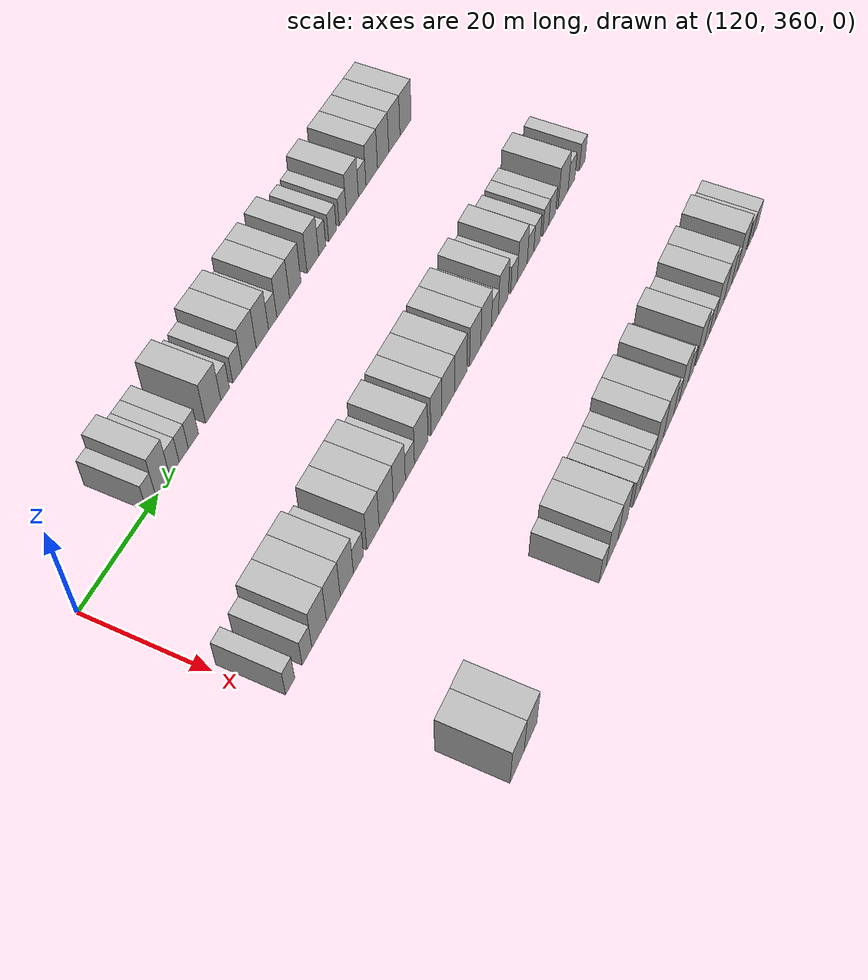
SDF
<sdf version="1.6">
 <world name="default">
  <model name="building_836">
   <static>1</static>
   <pose>115.0000 378.2056 0 0.000000 0.000000 0.000000</pose>
   <link name="link">
    <pose>0 0 3.00 0 0 0</pose>
    <collision name="collision"><geometry><box><size>10.0000 2.4378 6.0000</size></box></geometry></collision>
    <visual name="visual">
     <cast_shadows>0</cast_shadows>
     <geometry><box><size>10.0000 2.4378 6.0000</size></box></geometry>
     <material>
      <script>
       <uri>model://HANNAS_wall/materials/scripts</uri>
       <uri>model://HANNAS_wall/materials/textures</uri>
       <name>vrc/HANNAS_wall</name>
      </script>
     </material>
    </visual>
   </link>
  </model>
  <model name="building_837">
   <static>1</static>
   <pose>115.0000 381.2652 0 0.000000 0.000000 0.000000</pose>
   <link name="link">
    <pose>0 0 4.50 0 0 0</pose>
    <collision name="collision"><geometry><box><size>10.0000 3.6815 9.0000</size></box></geometry></collision>
    <visual name="visual">
     <cast_shadows>0</cast_shadows>
     <geometry><box><size>10.0000 3.6815 9.0000</size></box></geometry>
     <material>
      <script>
       <uri>model://HANNAS_wall/materials/scripts</uri>
       <uri>model://HANNAS_wall/materials/textures</uri>
       <name>vrc/HANNAS_wall</name>
      </script>
     </material>
    </visual>
   </link>
  </model>
  <model name="building_838">
   <static>1</static>
   <pose>115.0000 384.3918 0 0.000000 0.000000 0.000000</pose>
   <link name="link">
    <pose>0 0 3.00 0 0 0</pose>
    <collision name="collision"><geometry><box><size>10.0000 2.5716 6.0000</size></box></geometry></collision>
    <visual name="visual">
     <cast_shadows>0</cast_shadows>
     <geometry><box><size>10.0000 2.5716 6.0000</size></box></geometry>
     <material>
      <script>
       <uri>model://HANNAS_wall/materials/scripts</uri>
       <uri>model://HANNAS_wall/materials/textures</uri>
       <name>vrc/HANNAS_wall</name>
      </script>
     </material>
    </visual>
   </link>
  </model>
  <model name="building_839">
   <static>1</static>
   <pose>115.0000 386.9191 0 0.000000 0.000000 0.000000</pose>
   <link name="link">
    <pose>0 0 3.00 0 0 0</pose>
    <collision name="collision"><geometry><box><size>10.0000 2.4829 6.0000</size></box></geometry></collision>
    <visual name="visual">
     <cast_shadows>0</cast_shadows>
     <geometry><box><size>10.0000 2.4829 6.0000</size></box></geometry>
     <material>
      <script>
       <uri>model://HANNAS_wall/materials/scripts</uri>
       <uri>model://HANNAS_wall/materials/textures</uri>
       <name>vrc/HANNAS_wall</name>
      </script>
     </material>
    </visual>
   </link>
  </model>
  <model name="building_840">
   <static>1</static>
   <pose>115.0000 389.5580 0 0.000000 0.000000 0.000000</pose>
   <link name="link">
    <pose>0 0 3.00 0 0 0</pose>
    <collision name="collision"><geometry><box><size>10.0000 2.7949 6.0000</size></box></geometry></collision>
    <visual name="visual">
     <cast_shadows>0</cast_shadows>
     <geometry><box><size>10.0000 2.7949 6.0000</size></box></geometry>
     <material>
      <script>
       <uri>model://HANNAS_wall/materials/scripts</uri>
       <uri>model://HANNAS_wall/materials/textures</uri>
       <name>vrc/HANNAS_wall</name>
      </script>
     </material>
    </visual>
   </link>
  </model>
  <model name="building_841">
   <static>1</static>
   <pose>115.0000 395.1320 0 0.000000 0.000000 0.000000</pose>
   <link name="link">
    <pose>0 0 4.50 0 0 0</pose>
    <collision name="collision"><geometry><box><size>10.0000 4.3532 9.0000</size></box></geometry></collision>
    <visual name="visual">
     <cast_shadows>0</cast_shadows>
     <geometry><box><size>10.0000 4.3532 9.0000</size></box></geometry>
     <material>
      <script>
       <uri>model://HANNAS_wall/materials/scripts</uri>
       <uri>model://HANNAS_wall/materials/textures</uri>
       <name>vrc/HANNAS_wall</name>
      </script>
     </material>
    </visual>
   </link>
  </model>
  <model name="building_842">
   <static>1</static>
   <pose>115.0000 398.5623 0 0.000000 0.000000 0.000000</pose>
   <link name="link">
    <pose>0 0 3.00 0 0 0</pose>
    <collision name="collision"><geometry><box><size>10.0000 2.5073 6.0000</size></box></geometry></collision>
    <visual name="visual">
     <cast_shadows>0</cast_shadows>
     <geometry><box><size>10.0000 2.5073 6.0000</size></box></geometry>
     <material>
      <script>
       <uri>model://HANNAS_wall/materials/scripts</uri>
       <uri>model://HANNAS_wall/materials/textures</uri>
       <name>vrc/HANNAS_wall</name>
      </script>
     </material>
    </visual>
   </link>
  </model>
  <model name="building_843">
   <static>1</static>
   <pose>115.0000 402.1955 0 0.000000 0.000000 0.000000</pose>
   <link name="link">
    <pose>0 0 3.00 0 0 0</pose>
    <collision name="collision"><geometry><box><size>10.0000 2.7591 6.0000</size></box></geometry></collision>
    <visual name="visual">
     <cast_shadows>0</cast_shadows>
     <geometry><box><size>10.0000 2.7591 6.0000</size></box></geometry>
     <material>
      <script>
       <uri>model://HANNAS_wall/materials/scripts</uri>
       <uri>model://HANNAS_wall/materials/textures</uri>
       <name>vrc/HANNAS_wall</name>
      </script>
     </material>
    </visual>
   </link>
  </model>
  <model name="building_844">
   <static>1</static>
   <pose>115.0000 405.6885 0 0.000000 0.000000 0.000000</pose>
   <link name="link">
    <pose>0 0 4.50 0 0 0</pose>
    <collision name="collision"><geometry><box><size>10.0000 4.2268 9.0000</size></box></geometry></collision>
    <visual name="visual">
     <cast_shadows>0</cast_shadows>
     <geometry><box><size>10.0000 4.2268 9.0000</size></box></geometry>
     <material>
      <script>
       <uri>model://HANNAS_wall/materials/scripts</uri>
       <uri>model://HANNAS_wall/materials/textures</uri>
       <name>vrc/HANNAS_wall</name>
      </script>
     </material>
    </visual>
   </link>
  </model>
  <model name="building_845">
   <static>1</static>
   <pose>115.0000 409.6979 0 0.000000 0.000000 0.000000</pose>
   <link name="link">
    <pose>0 0 4.50 0 0 0</pose>
    <collision name="collision"><geometry><box><size>10.0000 3.7919 9.0000</size></box></geometry></collision>
    <visual name="visual">
     <cast_shadows>0</cast_shadows>
     <geometry><box><size>10.0000 3.7919 9.0000</size></box></geometry>
     <material>
      <script>
       <uri>model://HANNAS_wall/materials/scripts</uri>
       <uri>model://HANNAS_wall/materials/textures</uri>
       <name>vrc/HANNAS_wall</name>
      </script>
     </material>
    </visual>
   </link>
  </model>
  <model name="building_846">
   <static>1</static>
   <pose>115.0000 412.8919 0 0.000000 0.000000 0.000000</pose>
   <link name="link">
    <pose>0 0 3.00 0 0 0</pose>
    <collision name="collision"><geometry><box><size>10.0000 2.5961 6.0000</size></box></geometry></collision>
    <visual name="visual">
     <cast_shadows>0</cast_shadows>
     <geometry><box><size>10.0000 2.5961 6.0000</size></box></geometry>
     <material>
      <script>
       <uri>model://HANNAS_wall/materials/scripts</uri>
       <uri>model://HANNAS_wall/materials/textures</uri>
       <name>vrc/HANNAS_wall</name>
      </script>
     </material>
    </visual>
   </link>
  </model>
  <model name="building_847">
   <static>1</static>
   <pose>115.0000 416.2108 0 0.000000 0.000000 0.000000</pose>
   <link name="link">
    <pose>0 0 4.50 0 0 0</pose>
    <collision name="collision"><geometry><box><size>10.0000 4.0418 9.0000</size></box></geometry></collision>
    <visual name="visual">
     <cast_shadows>0</cast_shadows>
     <geometry><box><size>10.0000 4.0418 9.0000</size></box></geometry>
     <material>
      <script>
       <uri>model://HANNAS_wall/materials/scripts</uri>
       <uri>model://HANNAS_wall/materials/textures</uri>
       <name>vrc/HANNAS_wall</name>
      </script>
     </material>
    </visual>
   </link>
  </model>
  <model name="building_848">
   <static>1</static>
   <pose>115.0000 420.0772 0 0.000000 0.000000 0.000000</pose>
   <link name="link">
    <pose>0 0 4.50 0 0 0</pose>
    <collision name="collision"><geometry><box><size>10.0000 3.6910 9.0000</size></box></geometry></collision>
    <visual name="visual">
     <cast_shadows>0</cast_shadows>
     <geometry><box><size>10.0000 3.6910 9.0000</size></box></geometry>
     <material>
      <script>
       <uri>model://HANNAS_wall/materials/scripts</uri>
       <uri>model://HANNAS_wall/materials/textures</uri>
       <name>vrc/HANNAS_wall</name>
      </script>
     </material>
    </visual>
   </link>
  </model>
  <model name="building_849">
   <static>1</static>
   <pose>115.0000 425.8542 0 0.000000 0.000000 0.000000</pose>
   <link name="link">
    <pose>0 0 4.50 0 0 0</pose>
    <collision name="collision"><geometry><box><size>10.0000 3.8630 9.0000</size></box></geometry></collision>
    <visual name="visual">
     <cast_shadows>0</cast_shadows>
     <geometry><box><size>10.0000 3.8630 9.0000</size></box></geometry>
     <material>
      <script>
       <uri>model://HANNAS_wall/materials/scripts</uri>
       <uri>model://HANNAS_wall/materials/textures</uri>
       <name>vrc/HANNAS_wall</name>
      </script>
     </material>
    </visual>
   </link>
  </model>
  <model name="building_850">
   <static>1</static>
   <pose>115.0000 428.9865 0 0.000000 0.000000 0.000000</pose>
   <link name="link">
    <pose>0 0 3.00 0 0 0</pose>
    <collision name="collision"><geometry><box><size>10.0000 2.4016 6.0000</size></box></geometry></collision>
    <visual name="visual">
     <cast_shadows>0</cast_shadows>
     <geometry><box><size>10.0000 2.4016 6.0000</size></box></geometry>
     <material>
      <script>
       <uri>model://HANNAS_wall/materials/scripts</uri>
       <uri>model://HANNAS_wall/materials/textures</uri>
       <name>vrc/HANNAS_wall</name>
      </script>
     </material>
    </visual>
   </link>
  </model>
  <model name="building_851">
   <static>1</static>
   <pose>115.0000 432.4930 0 0.000000 0.000000 0.000000</pose>
   <link name="link">
    <pose>0 0 3.00 0 0 0</pose>
    <collision name="collision"><geometry><box><size>10.0000 2.6115 6.0000</size></box></geometry></collision>
    <visual name="visual">
     <cast_shadows>0</cast_shadows>
     <geometry><box><size>10.0000 2.6115 6.0000</size></box></geometry>
     <material>
      <script>
       <uri>model://HANNAS_wall/materials/scripts</uri>
       <uri>model://HANNAS_wall/materials/textures</uri>
       <name>vrc/HANNAS_wall</name>
      </script>
     </material>
    </visual>
   </link>
  </model>
  <model name="building_852">
   <static>1</static>
   <pose>115.0000 436.0468 0 0.000000 0.000000 0.000000</pose>
   <link name="link">
    <pose>0 0 3.00 0 0 0</pose>
    <collision name="collision"><geometry><box><size>10.0000 2.4961 6.0000</size></box></geometry></collision>
    <visual name="visual">
     <cast_shadows>0</cast_shadows>
     <geometry><box><size>10.0000 2.4961 6.0000</size></box></geometry>
     <material>
      <script>
       <uri>model://HANNAS_wall/materials/scripts</uri>
       <uri>model://HANNAS_wall/materials/textures</uri>
       <name>vrc/HANNAS_wall</name>
      </script>
     </material>
    </visual>
   </link>
  </model>
  <model name="building_853">
   <static>1</static>
   <pose>115.0000 439.4308 0 0.000000 0.000000 0.000000</pose>
   <link name="link">
    <pose>0 0 4.50 0 0 0</pose>
    <collision name="collision"><geometry><box><size>10.0000 4.2719 9.0000</size></box></geometry></collision>
    <visual name="visual">
     <cast_shadows>0</cast_shadows>
     <geometry><box><size>10.0000 4.2719 9.0000</size></box></geometry>
     <material>
      <script>
       <uri>model://HANNAS_wall/materials/scripts</uri>
       <uri>model://HANNAS_wall/materials/textures</uri>
       <name>vrc/HANNAS_wall</name>
      </script>
     </material>
    </visual>
   </link>
  </model>
  <model name="building_854">
   <static>1</static>
   <pose>115.0000 442.9265 0 0.000000 0.000000 0.000000</pose>
   <link name="link">
    <pose>0 0 3.00 0 0 0</pose>
    <collision name="collision"><geometry><box><size>10.0000 2.7197 6.0000</size></box></geometry></collision>
    <visual name="visual">
     <cast_shadows>0</cast_shadows>
     <geometry><box><size>10.0000 2.7197 6.0000</size></box></geometry>
     <material>
      <script>
       <uri>model://HANNAS_wall/materials/scripts</uri>
       <uri>model://HANNAS_wall/materials/textures</uri>
       <name>vrc/HANNAS_wall</name>
      </script>
     </material>
    </visual>
   </link>
  </model>
  <model name="building_855">
   <static>1</static>
   <pose>115.0000 446.4044 0 0.000000 0.000000 0.000000</pose>
   <link name="link">
    <pose>0 0 4.50 0 0 0</pose>
    <collision name="collision"><geometry><box><size>10.0000 4.2360 9.0000</size></box></geometry></collision>
    <visual name="visual">
     <cast_shadows>0</cast_shadows>
     <geometry><box><size>10.0000 4.2360 9.0000</size></box></geometry>
     <material>
      <script>
       <uri>model://HANNAS_wall/materials/scripts</uri>
       <uri>model://HANNAS_wall/materials/textures</uri>
       <name>vrc/HANNAS_wall</name>
      </script>
     </material>
    </visual>
   </link>
  </model>
  <model name="building_856">
   <static>1</static>
   <pose>115.0000 450.6155 0 0.000000 0.000000 0.000000</pose>
   <link name="link">
    <pose>0 0 4.50 0 0 0</pose>
    <collision name="collision"><geometry><box><size>10.0000 4.1862 9.0000</size></box></geometry></collision>
    <visual name="visual">
     <cast_shadows>0</cast_shadows>
     <geometry><box><size>10.0000 4.1862 9.0000</size></box></geometry>
     <material>
      <script>
       <uri>model://HANNAS_wall/materials/scripts</uri>
       <uri>model://HANNAS_wall/materials/textures</uri>
       <name>vrc/HANNAS_wall</name>
      </script>
     </material>
    </visual>
   </link>
  </model>
  <model name="building_857">
   <static>1</static>
   <pose>115.0000 454.8383 0 0.000000 0.000000 0.000000</pose>
   <link name="link">
    <pose>0 0 4.50 0 0 0</pose>
    <collision name="collision"><geometry><box><size>10.0000 4.2594 9.0000</size></box></geometry></collision>
    <visual name="visual">
     <cast_shadows>0</cast_shadows>
     <geometry><box><size>10.0000 4.2594 9.0000</size></box></geometry>
     <material>
      <script>
       <uri>model://HANNAS_wall/materials/scripts</uri>
       <uri>model://HANNAS_wall/materials/textures</uri>
       <name>vrc/HANNAS_wall</name>
      </script>
     </material>
    </visual>
   </link>
  </model>
  <model name="building_858">
   <static>1</static>
   <pose>115.0000 459.1244 0 0.000000 0.000000 0.000000</pose>
   <link name="link">
    <pose>0 0 4.50 0 0 0</pose>
    <collision name="collision"><geometry><box><size>10.0000 4.3128 9.0000</size></box></geometry></collision>
    <visual name="visual">
     <cast_shadows>0</cast_shadows>
     <geometry><box><size>10.0000 4.3128 9.0000</size></box></geometry>
     <material>
      <script>
       <uri>model://HANNAS_wall/materials/scripts</uri>
       <uri>model://HANNAS_wall/materials/textures</uri>
       <name>vrc/HANNAS_wall</name>
      </script>
     </material>
    </visual>
   </link>
  </model>
  <model name="building_1057">
   <static>1</static>
   <pose>145.0000 362.2427 0 0.000000 0.000000 0.000000</pose>
   <link name="link">
    <pose>0 0 3.00 0 0 0</pose>
    <collision name="collision"><geometry><box><size>10.0000 2.4571 6.0000</size></box></geometry></collision>
    <visual name="visual">
     <cast_shadows>0</cast_shadows>
     <geometry><box><size>10.0000 2.4571 6.0000</size></box></geometry>
     <material>
      <script>
       <uri>model://HANNAS_wall/materials/scripts</uri>
       <uri>model://HANNAS_wall/materials/textures</uri>
       <name>vrc/HANNAS_wall</name>
      </script>
     </material>
    </visual>
   </link>
  </model>
  <model name="building_1058">
   <static>1</static>
   <pose>145.0000 366.7881 0 0.000000 0.000000 0.000000</pose>
   <link name="link">
    <pose>0 0 3.00 0 0 0</pose>
    <collision name="collision"><geometry><box><size>10.0000 2.6337 6.0000</size></box></geometry></collision>
    <visual name="visual">
     <cast_shadows>0</cast_shadows>
     <geometry><box><size>10.0000 2.6337 6.0000</size></box></geometry>
     <material>
      <script>
       <uri>model://HANNAS_wall/materials/scripts</uri>
       <uri>model://HANNAS_wall/materials/textures</uri>
       <name>vrc/HANNAS_wall</name>
      </script>
     </material>
    </visual>
   </link>
  </model>
  <model name="building_1059">
   <static>1</static>
   <pose>145.0000 370.1492 0 0.000000 0.000000 0.000000</pose>
   <link name="link">
    <pose>0 0 4.50 0 0 0</pose>
    <collision name="collision"><geometry><box><size>10.0000 4.0883 9.0000</size></box></geometry></collision>
    <visual name="visual">
     <cast_shadows>0</cast_shadows>
     <geometry><box><size>10.0000 4.0883 9.0000</size></box></geometry>
     <material>
      <script>
       <uri>model://HANNAS_wall/materials/scripts</uri>
       <uri>model://HANNAS_wall/materials/textures</uri>
       <name>vrc/HANNAS_wall</name>
      </script>
     </material>
    </visual>
   </link>
  </model>
  <model name="building_1060">
   <static>1</static>
   <pose>145.0000 374.1680 0 0.000000 0.000000 0.000000</pose>
   <link name="link">
    <pose>0 0 4.50 0 0 0</pose>
    <collision name="collision"><geometry><box><size>10.0000 3.9494 9.0000</size></box></geometry></collision>
    <visual name="visual">
     <cast_shadows>0</cast_shadows>
     <geometry><box><size>10.0000 3.9494 9.0000</size></box></geometry>
     <material>
      <script>
       <uri>model://HANNAS_wall/materials/scripts</uri>
       <uri>model://HANNAS_wall/materials/textures</uri>
       <name>vrc/HANNAS_wall</name>
      </script>
     </material>
    </visual>
   </link>
  </model>
  <model name="building_1061">
   <static>1</static>
   <pose>145.0000 378.0534 0 0.000000 0.000000 0.000000</pose>
   <link name="link">
    <pose>0 0 4.50 0 0 0</pose>
    <collision name="collision"><geometry><box><size>10.0000 3.8213 9.0000</size></box></geometry></collision>
    <visual name="visual">
     <cast_shadows>0</cast_shadows>
     <geometry><box><size>10.0000 3.8213 9.0000</size></box></geometry>
     <material>
      <script>
       <uri>model://HANNAS_wall/materials/scripts</uri>
       <uri>model://HANNAS_wall/materials/textures</uri>
       <name>vrc/HANNAS_wall</name>
      </script>
     </material>
    </visual>
   </link>
  </model>
  <model name="building_1062">
   <static>1</static>
   <pose>145.0000 381.4534 0 0.000000 0.000000 0.000000</pose>
   <link name="link">
    <pose>0 0 3.00 0 0 0</pose>
    <collision name="collision"><geometry><box><size>10.0000 2.9787 6.0000</size></box></geometry></collision>
    <visual name="visual">
     <cast_shadows>0</cast_shadows>
     <geometry><box><size>10.0000 2.9787 6.0000</size></box></geometry>
     <material>
      <script>
       <uri>model://HANNAS_wall/materials/scripts</uri>
       <uri>model://HANNAS_wall/materials/textures</uri>
       <name>vrc/HANNAS_wall</name>
      </script>
     </material>
    </visual>
   </link>
  </model>
  <model name="building_1063">
   <static>1</static>
   <pose>145.0000 385.8337 0 0.000000 0.000000 0.000000</pose>
   <link name="link">
    <pose>0 0 4.50 0 0 0</pose>
    <collision name="collision"><geometry><box><size>10.0000 3.7820 9.0000</size></box></geometry></collision>
    <visual name="visual">
     <cast_shadows>0</cast_shadows>
     <geometry><box><size>10.0000 3.7820 9.0000</size></box></geometry>
     <material>
      <script>
       <uri>model://HANNAS_wall/materials/scripts</uri>
       <uri>model://HANNAS_wall/materials/textures</uri>
       <name>vrc/HANNAS_wall</name>
      </script>
     </material>
    </visual>
   </link>
  </model>
  <model name="building_1064">
   <static>1</static>
   <pose>145.0000 389.9159 0 0.000000 0.000000 0.000000</pose>
   <link name="link">
    <pose>0 0 4.50 0 0 0</pose>
    <collision name="collision"><geometry><box><size>10.0000 4.3825 9.0000</size></box></geometry></collision>
    <visual name="visual">
     <cast_shadows>0</cast_shadows>
     <geometry><box><size>10.0000 4.3825 9.0000</size></box></geometry>
     <material>
      <script>
       <uri>model://HANNAS_wall/materials/scripts</uri>
       <uri>model://HANNAS_wall/materials/textures</uri>
       <name>vrc/HANNAS_wall</name>
      </script>
     </material>
    </visual>
   </link>
  </model>
  <model name="building_1065">
   <static>1</static>
   <pose>145.0000 394.0234 0 0.000000 0.000000 0.000000</pose>
   <link name="link">
    <pose>0 0 4.50 0 0 0</pose>
    <collision name="collision"><geometry><box><size>10.0000 3.8324 9.0000</size></box></geometry></collision>
    <visual name="visual">
     <cast_shadows>0</cast_shadows>
     <geometry><box><size>10.0000 3.8324 9.0000</size></box></geometry>
     <material>
      <script>
       <uri>model://HANNAS_wall/materials/scripts</uri>
       <uri>model://HANNAS_wall/materials/textures</uri>
       <name>vrc/HANNAS_wall</name>
      </script>
     </material>
    </visual>
   </link>
  </model>
  <model name="building_1066">
   <static>1</static>
   <pose>145.0000 397.4153 0 0.000000 0.000000 0.000000</pose>
   <link name="link">
    <pose>0 0 3.00 0 0 0</pose>
    <collision name="collision"><geometry><box><size>10.0000 2.9515 6.0000</size></box></geometry></collision>
    <visual name="visual">
     <cast_shadows>0</cast_shadows>
     <geometry><box><size>10.0000 2.9515 6.0000</size></box></geometry>
     <material>
      <script>
       <uri>model://HANNAS_wall/materials/scripts</uri>
       <uri>model://HANNAS_wall/materials/textures</uri>
       <name>vrc/HANNAS_wall</name>
      </script>
     </material>
    </visual>
   </link>
  </model>
  <model name="building_1067">
   <static>1</static>
   <pose>145.0000 401.0854 0 0.000000 0.000000 0.000000</pose>
   <link name="link">
    <pose>0 0 4.50 0 0 0</pose>
    <collision name="collision"><geometry><box><size>10.0000 4.3888 9.0000</size></box></geometry></collision>
    <visual name="visual">
     <cast_shadows>0</cast_shadows>
     <geometry><box><size>10.0000 4.3888 9.0000</size></box></geometry>
     <material>
      <script>
       <uri>model://HANNAS_wall/materials/scripts</uri>
       <uri>model://HANNAS_wall/materials/textures</uri>
       <name>vrc/HANNAS_wall</name>
      </script>
     </material>
    </visual>
   </link>
  </model>
  <model name="building_1068">
   <static>1</static>
   <pose>145.0000 406.1591 0 0.000000 0.000000 0.000000</pose>
   <link name="link">
    <pose>0 0 4.50 0 0 0</pose>
    <collision name="collision"><geometry><box><size>10.0000 3.7586 9.0000</size></box></geometry></collision>
    <visual name="visual">
     <cast_shadows>0</cast_shadows>
     <geometry><box><size>10.0000 3.7586 9.0000</size></box></geometry>
     <material>
      <script>
       <uri>model://HANNAS_wall/materials/scripts</uri>
       <uri>model://HANNAS_wall/materials/textures</uri>
       <name>vrc/HANNAS_wall</name>
      </script>
     </material>
    </visual>
   </link>
  </model>
  <model name="building_1069">
   <static>1</static>
   <pose>145.0000 410.2108 0 0.000000 0.000000 0.000000</pose>
   <link name="link">
    <pose>0 0 4.50 0 0 0</pose>
    <collision name="collision"><geometry><box><size>10.0000 4.3446 9.0000</size></box></geometry></collision>
    <visual name="visual">
     <cast_shadows>0</cast_shadows>
     <geometry><box><size>10.0000 4.3446 9.0000</size></box></geometry>
     <material>
      <script>
       <uri>model://HANNAS_wall/materials/scripts</uri>
       <uri>model://HANNAS_wall/materials/textures</uri>
       <name>vrc/HANNAS_wall</name>
      </script>
     </material>
    </visual>
   </link>
  </model>
  <model name="building_1070">
   <static>1</static>
   <pose>145.0000 414.5787 0 0.000000 0.000000 0.000000</pose>
   <link name="link">
    <pose>0 0 4.50 0 0 0</pose>
    <collision name="collision"><geometry><box><size>10.0000 4.3912 9.0000</size></box></geometry></collision>
    <visual name="visual">
     <cast_shadows>0</cast_shadows>
     <geometry><box><size>10.0000 4.3912 9.0000</size></box></geometry>
     <material>
      <script>
       <uri>model://HANNAS_wall/materials/scripts</uri>
       <uri>model://HANNAS_wall/materials/textures</uri>
       <name>vrc/HANNAS_wall</name>
      </script>
     </material>
    </visual>
   </link>
  </model>
  <model name="building_1071">
   <static>1</static>
   <pose>145.0000 419.8165 0 0.000000 0.000000 0.000000</pose>
   <link name="link">
    <pose>0 0 4.50 0 0 0</pose>
    <collision name="collision"><geometry><box><size>10.0000 4.0843 9.0000</size></box></geometry></collision>
    <visual name="visual">
     <cast_shadows>0</cast_shadows>
     <geometry><box><size>10.0000 4.0843 9.0000</size></box></geometry>
     <material>
      <script>
       <uri>model://HANNAS_wall/materials/scripts</uri>
       <uri>model://HANNAS_wall/materials/textures</uri>
       <name>vrc/HANNAS_wall</name>
      </script>
     </material>
    </visual>
   </link>
  </model>
  <model name="building_1072">
   <static>1</static>
   <pose>145.0000 423.8168 0 0.000000 0.000000 0.000000</pose>
   <link name="link">
    <pose>0 0 4.50 0 0 0</pose>
    <collision name="collision"><geometry><box><size>10.0000 3.9163 9.0000</size></box></geometry></collision>
    <visual name="visual">
     <cast_shadows>0</cast_shadows>
     <geometry><box><size>10.0000 3.9163 9.0000</size></box></geometry>
     <material>
      <script>
       <uri>model://HANNAS_wall/materials/scripts</uri>
       <uri>model://HANNAS_wall/materials/textures</uri>
       <name>vrc/HANNAS_wall</name>
      </script>
     </material>
    </visual>
   </link>
  </model>
  <model name="building_1073">
   <static>1</static>
   <pose>145.0000 427.0924 0 0.000000 0.000000 0.000000</pose>
   <link name="link">
    <pose>0 0 3.00 0 0 0</pose>
    <collision name="collision"><geometry><box><size>10.0000 2.6349 6.0000</size></box></geometry></collision>
    <visual name="visual">
     <cast_shadows>0</cast_shadows>
     <geometry><box><size>10.0000 2.6349 6.0000</size></box></geometry>
     <material>
      <script>
       <uri>model://HANNAS_wall/materials/scripts</uri>
       <uri>model://HANNAS_wall/materials/textures</uri>
       <name>vrc/HANNAS_wall</name>
      </script>
     </material>
    </visual>
   </link>
  </model>
  <model name="building_1074">
   <static>1</static>
   <pose>145.0000 430.2891 0 0.000000 0.000000 0.000000</pose>
   <link name="link">
    <pose>0 0 4.50 0 0 0</pose>
    <collision name="collision"><geometry><box><size>10.0000 3.7585 9.0000</size></box></geometry></collision>
    <visual name="visual">
     <cast_shadows>0</cast_shadows>
     <geometry><box><size>10.0000 3.7585 9.0000</size></box></geometry>
     <material>
      <script>
       <uri>model://HANNAS_wall/materials/scripts</uri>
       <uri>model://HANNAS_wall/materials/textures</uri>
       <name>vrc/HANNAS_wall</name>
      </script>
     </material>
    </visual>
   </link>
  </model>
  <model name="building_1075">
   <static>1</static>
   <pose>145.0000 434.4689 0 0.000000 0.000000 0.000000</pose>
   <link name="link">
    <pose>0 0 3.00 0 0 0</pose>
    <collision name="collision"><geometry><box><size>10.0000 2.6011 6.0000</size></box></geometry></collision>
    <visual name="visual">
     <cast_shadows>0</cast_shadows>
     <geometry><box><size>10.0000 2.6011 6.0000</size></box></geometry>
     <material>
      <script>
       <uri>model://HANNAS_wall/materials/scripts</uri>
       <uri>model://HANNAS_wall/materials/textures</uri>
       <name>vrc/HANNAS_wall</name>
      </script>
     </material>
    </visual>
   </link>
  </model>
  <model name="building_1076">
   <static>1</static>
   <pose>145.0000 437.7368 0 0.000000 0.000000 0.000000</pose>
   <link name="link">
    <pose>0 0 4.50 0 0 0</pose>
    <collision name="collision"><geometry><box><size>10.0000 3.9347 9.0000</size></box></geometry></collision>
    <visual name="visual">
     <cast_shadows>0</cast_shadows>
     <geometry><box><size>10.0000 3.9347 9.0000</size></box></geometry>
     <material>
      <script>
       <uri>model://HANNAS_wall/materials/scripts</uri>
       <uri>model://HANNAS_wall/materials/textures</uri>
       <name>vrc/HANNAS_wall</name>
      </script>
     </material>
    </visual>
   </link>
  </model>
  <model name="building_1077">
   <static>1</static>
   <pose>145.0000 441.0298 0 0.000000 0.000000 0.000000</pose>
   <link name="link">
    <pose>0 0 3.00 0 0 0</pose>
    <collision name="collision"><geometry><box><size>10.0000 2.6513 6.0000</size></box></geometry></collision>
    <visual name="visual">
     <cast_shadows>0</cast_shadows>
     <geometry><box><size>10.0000 2.6513 6.0000</size></box></geometry>
     <material>
      <script>
       <uri>model://HANNAS_wall/materials/scripts</uri>
       <uri>model://HANNAS_wall/materials/textures</uri>
       <name>vrc/HANNAS_wall</name>
      </script>
     </material>
    </visual>
   </link>
  </model>
  <model name="building_1078">
   <static>1</static>
   <pose>145.0000 443.6932 0 0.000000 0.000000 0.000000</pose>
   <link name="link">
    <pose>0 0 3.00 0 0 0</pose>
    <collision name="collision"><geometry><box><size>10.0000 2.6754 6.0000</size></box></geometry></collision>
    <visual name="visual">
     <cast_shadows>0</cast_shadows>
     <geometry><box><size>10.0000 2.6754 6.0000</size></box></geometry>
     <material>
      <script>
       <uri>model://HANNAS_wall/materials/scripts</uri>
       <uri>model://HANNAS_wall/materials/textures</uri>
       <name>vrc/HANNAS_wall</name>
      </script>
     </material>
    </visual>
   </link>
  </model>
  <model name="building_1079">
   <static>1</static>
   <pose>145.0000 447.2867 0 0.000000 0.000000 0.000000</pose>
   <link name="link">
    <pose>0 0 3.00 0 0 0</pose>
    <collision name="collision"><geometry><box><size>10.0000 2.5115 6.0000</size></box></geometry></collision>
    <visual name="visual">
     <cast_shadows>0</cast_shadows>
     <geometry><box><size>10.0000 2.5115 6.0000</size></box></geometry>
     <material>
      <script>
       <uri>model://HANNAS_wall/materials/scripts</uri>
       <uri>model://HANNAS_wall/materials/textures</uri>
       <name>vrc/HANNAS_wall</name>
      </script>
     </material>
    </visual>
   </link>
  </model>
  <model name="building_1080">
   <static>1</static>
   <pose>145.0000 450.0146 0 0.000000 0.000000 0.000000</pose>
   <link name="link">
    <pose>0 0 3.00 0 0 0</pose>
    <collision name="collision"><geometry><box><size>10.0000 2.9444 6.0000</size></box></geometry></collision>
    <visual name="visual">
     <cast_shadows>0</cast_shadows>
     <geometry><box><size>10.0000 2.9444 6.0000</size></box></geometry>
     <material>
      <script>
       <uri>model://HANNAS_wall/materials/scripts</uri>
       <uri>model://HANNAS_wall/materials/textures</uri>
       <name>vrc/HANNAS_wall</name>
      </script>
     </material>
    </visual>
   </link>
  </model>
  <model name="building_1081">
   <static>1</static>
   <pose>145.0000 454.6473 0 0.000000 0.000000 0.000000</pose>
   <link name="link">
    <pose>0 0 4.50 0 0 0</pose>
    <collision name="collision"><geometry><box><size>10.0000 4.3209 9.0000</size></box></geometry></collision>
    <visual name="visual">
     <cast_shadows>0</cast_shadows>
     <geometry><box><size>10.0000 4.3209 9.0000</size></box></geometry>
     <material>
      <script>
       <uri>model://HANNAS_wall/materials/scripts</uri>
       <uri>model://HANNAS_wall/materials/textures</uri>
       <name>vrc/HANNAS_wall</name>
      </script>
     </material>
    </visual>
   </link>
  </model>
  <model name="building_1082">
   <static>1</static>
   <pose>145.0000 458.2918 0 0.000000 0.000000 0.000000</pose>
   <link name="link">
    <pose>0 0 3.00 0 0 0</pose>
    <collision name="collision"><geometry><box><size>10.0000 2.9681 6.0000</size></box></geometry></collision>
    <visual name="visual">
     <cast_shadows>0</cast_shadows>
     <geometry><box><size>10.0000 2.9681 6.0000</size></box></geometry>
     <material>
      <script>
       <uri>model://HANNAS_wall/materials/scripts</uri>
       <uri>model://HANNAS_wall/materials/textures</uri>
       <name>vrc/HANNAS_wall</name>
      </script>
     </material>
    </visual>
   </link>
  </model>
  <model name="building_1083">
   <static>1</static>
   <pose>145.0000 463.0519 0 0.000000 0.000000 0.000000</pose>
   <link name="link">
    <pose>0 0 3.00 0 0 0</pose>
    <collision name="collision"><geometry><box><size>10.0000 2.5521 6.0000</size></box></geometry></collision>
    <visual name="visual">
     <cast_shadows>0</cast_shadows>
     <geometry><box><size>10.0000 2.5521 6.0000</size></box></geometry>
     <material>
      <script>
       <uri>model://HANNAS_wall/materials/scripts</uri>
       <uri>model://HANNAS_wall/materials/textures</uri>
       <name>vrc/HANNAS_wall</name>
      </script>
     </material>
    </visual>
   </link>
  </model>
  <model name="building_1277">
   <static>1</static>
   <pose>175.0000 364.3349 0 0.000000 0.000000 0.000000</pose>
   <link name="link">
    <pose>0 0 4.50 0 0 0</pose>
    <collision name="collision"><geometry><box><size>10.0000 4.4239 9.0000</size></box></geometry></collision>
    <visual name="visual">
     <cast_shadows>0</cast_shadows>
     <geometry><box><size>10.0000 4.4239 9.0000</size></box></geometry>
     <material>
      <script>
       <uri>model://HANNAS_wall/materials/scripts</uri>
       <uri>model://HANNAS_wall/materials/textures</uri>
       <name>vrc/HANNAS_wall</name>
      </script>
     </material>
    </visual>
   </link>
  </model>
  <model name="building_1278">
   <static>1</static>
   <pose>175.0000 368.5667 0 0.000000 0.000000 0.000000</pose>
   <link name="link">
    <pose>0 0 4.50 0 0 0</pose>
    <collision name="collision"><geometry><box><size>10.0000 4.0398 9.0000</size></box></geometry></collision>
    <visual name="visual">
     <cast_shadows>0</cast_shadows>
     <geometry><box><size>10.0000 4.0398 9.0000</size></box></geometry>
     <material>
      <script>
       <uri>model://HANNAS_wall/materials/scripts</uri>
       <uri>model://HANNAS_wall/materials/textures</uri>
       <name>vrc/HANNAS_wall</name>
      </script>
     </material>
    </visual>
   </link>
  </model>
  <model name="building_1279">
   <static>1</static>
   <pose>175.0000 393.3907 0 0.000000 0.000000 0.000000</pose>
   <link name="link">
    <pose>0 0 3.00 0 0 0</pose>
    <collision name="collision"><geometry><box><size>10.0000 2.5361 6.0000</size></box></geometry></collision>
    <visual name="visual">
     <cast_shadows>0</cast_shadows>
     <geometry><box><size>10.0000 2.5361 6.0000</size></box></geometry>
     <material>
      <script>
       <uri>model://HANNAS_wall/materials/scripts</uri>
       <uri>model://HANNAS_wall/materials/textures</uri>
       <name>vrc/HANNAS_wall</name>
      </script>
     </material>
    </visual>
   </link>
  </model>
  <model name="building_1280">
   <static>1</static>
   <pose>175.0000 396.8988 0 0.000000 0.000000 0.000000</pose>
   <link name="link">
    <pose>0 0 4.50 0 0 0</pose>
    <collision name="collision"><geometry><box><size>10.0000 4.4801 9.0000</size></box></geometry></collision>
    <visual name="visual">
     <cast_shadows>0</cast_shadows>
     <geometry><box><size>10.0000 4.4801 9.0000</size></box></geometry>
     <material>
      <script>
       <uri>model://HANNAS_wall/materials/scripts</uri>
       <uri>model://HANNAS_wall/materials/textures</uri>
       <name>vrc/HANNAS_wall</name>
      </script>
     </material>
    </visual>
   </link>
  </model>
  <model name="building_1281">
   <static>1</static>
   <pose>175.0000 401.0358 0 0.000000 0.000000 0.000000</pose>
   <link name="link">
    <pose>0 0 4.50 0 0 0</pose>
    <collision name="collision"><geometry><box><size>10.0000 3.7938 9.0000</size></box></geometry></collision>
    <visual name="visual">
     <cast_shadows>0</cast_shadows>
     <geometry><box><size>10.0000 3.7938 9.0000</size></box></geometry>
     <material>
      <script>
       <uri>model://HANNAS_wall/materials/scripts</uri>
       <uri>model://HANNAS_wall/materials/textures</uri>
       <name>vrc/HANNAS_wall</name>
      </script>
     </material>
    </visual>
   </link>
  </model>
  <model name="building_1282">
   <static>1</static>
   <pose>175.0000 406.3426 0 0.000000 0.000000 0.000000</pose>
   <link name="link">
    <pose>0 0 3.00 0 0 0</pose>
    <collision name="collision"><geometry><box><size>10.0000 2.8198 6.0000</size></box></geometry></collision>
    <visual name="visual">
     <cast_shadows>0</cast_shadows>
     <geometry><box><size>10.0000 2.8198 6.0000</size></box></geometry>
     <material>
      <script>
       <uri>model://HANNAS_wall/materials/scripts</uri>
       <uri>model://HANNAS_wall/materials/textures</uri>
       <name>vrc/HANNAS_wall</name>
      </script>
     </material>
    </visual>
   </link>
  </model>
  <model name="building_1283">
   <static>1</static>
   <pose>175.0000 409.2504 0 0.000000 0.000000 0.000000</pose>
   <link name="link">
    <pose>0 0 3.00 0 0 0</pose>
    <collision name="collision"><geometry><box><size>10.0000 2.9958 6.0000</size></box></geometry></collision>
    <visual name="visual">
     <cast_shadows>0</cast_shadows>
     <geometry><box><size>10.0000 2.9958 6.0000</size></box></geometry>
     <material>
      <script>
       <uri>model://HANNAS_wall/materials/scripts</uri>
       <uri>model://HANNAS_wall/materials/textures</uri>
       <name>vrc/HANNAS_wall</name>
      </script>
     </material>
    </visual>
   </link>
  </model>
  <model name="building_1284">
   <static>1</static>
   <pose>175.0000 412.1274 0 0.000000 0.000000 0.000000</pose>
   <link name="link">
    <pose>0 0 3.00 0 0 0</pose>
    <collision name="collision"><geometry><box><size>10.0000 2.7582 6.0000</size></box></geometry></collision>
    <visual name="visual">
     <cast_shadows>0</cast_shadows>
     <geometry><box><size>10.0000 2.7582 6.0000</size></box></geometry>
     <material>
      <script>
       <uri>model://HANNAS_wall/materials/scripts</uri>
       <uri>model://HANNAS_wall/materials/textures</uri>
       <name>vrc/HANNAS_wall</name>
      </script>
     </material>
    </visual>
   </link>
  </model>
  <model name="building_1285">
   <static>1</static>
   <pose>175.0000 415.4495 0 0.000000 0.000000 0.000000</pose>
   <link name="link">
    <pose>0 0 4.50 0 0 0</pose>
    <collision name="collision"><geometry><box><size>10.0000 3.8859 9.0000</size></box></geometry></collision>
    <visual name="visual">
     <cast_shadows>0</cast_shadows>
     <geometry><box><size>10.0000 3.8859 9.0000</size></box></geometry>
     <material>
      <script>
       <uri>model://HANNAS_wall/materials/scripts</uri>
       <uri>model://HANNAS_wall/materials/textures</uri>
       <name>vrc/HANNAS_wall</name>
      </script>
     </material>
    </visual>
   </link>
  </model>
  <model name="building_1286">
   <static>1</static>
   <pose>175.0000 419.5925 0 0.000000 0.000000 0.000000</pose>
   <link name="link">
    <pose>0 0 4.50 0 0 0</pose>
    <collision name="collision"><geometry><box><size>10.0000 4.4002 9.0000</size></box></geometry></collision>
    <visual name="visual">
     <cast_shadows>0</cast_shadows>
     <geometry><box><size>10.0000 4.4002 9.0000</size></box></geometry>
     <material>
      <script>
       <uri>model://HANNAS_wall/materials/scripts</uri>
       <uri>model://HANNAS_wall/materials/textures</uri>
       <name>vrc/HANNAS_wall</name>
      </script>
     </material>
    </visual>
   </link>
  </model>
  <model name="building_1287">
   <static>1</static>
   <pose>175.0000 422.9944 0 0.000000 0.000000 0.000000</pose>
   <link name="link">
    <pose>0 0 3.00 0 0 0</pose>
    <collision name="collision"><geometry><box><size>10.0000 2.4036 6.0000</size></box></geometry></collision>
    <visual name="visual">
     <cast_shadows>0</cast_shadows>
     <geometry><box><size>10.0000 2.4036 6.0000</size></box></geometry>
     <material>
      <script>
       <uri>model://HANNAS_wall/materials/scripts</uri>
       <uri>model://HANNAS_wall/materials/textures</uri>
       <name>vrc/HANNAS_wall</name>
      </script>
     </material>
    </visual>
   </link>
  </model>
  <model name="building_1288">
   <static>1</static>
   <pose>175.0000 426.0879 0 0.000000 0.000000 0.000000</pose>
   <link name="link">
    <pose>0 0 4.50 0 0 0</pose>
    <collision name="collision"><geometry><box><size>10.0000 3.7836 9.0000</size></box></geometry></collision>
    <visual name="visual">
     <cast_shadows>0</cast_shadows>
     <geometry><box><size>10.0000 3.7836 9.0000</size></box></geometry>
     <material>
      <script>
       <uri>model://HANNAS_wall/materials/scripts</uri>
       <uri>model://HANNAS_wall/materials/textures</uri>
       <name>vrc/HANNAS_wall</name>
      </script>
     </material>
    </visual>
   </link>
  </model>
  <model name="building_1289">
   <static>1</static>
   <pose>175.0000 429.2672 0 0.000000 0.000000 0.000000</pose>
   <link name="link">
    <pose>0 0 3.00 0 0 0</pose>
    <collision name="collision"><geometry><box><size>10.0000 2.5750 6.0000</size></box></geometry></collision>
    <visual name="visual">
     <cast_shadows>0</cast_shadows>
     <geometry><box><size>10.0000 2.5750 6.0000</size></box></geometry>
     <material>
      <script>
       <uri>model://HANNAS_wall/materials/scripts</uri>
       <uri>model://HANNAS_wall/materials/textures</uri>
       <name>vrc/HANNAS_wall</name>
      </script>
     </material>
    </visual>
   </link>
  </model>
  <model name="building_1290">
   <static>1</static>
   <pose>175.0000 433.4304 0 0.000000 0.000000 0.000000</pose>
   <link name="link">
    <pose>0 0 4.50 0 0 0</pose>
    <collision name="collision"><geometry><box><size>10.0000 3.7514 9.0000</size></box></geometry></collision>
    <visual name="visual">
     <cast_shadows>0</cast_shadows>
     <geometry><box><size>10.0000 3.7514 9.0000</size></box></geometry>
     <material>
      <script>
       <uri>model://HANNAS_wall/materials/scripts</uri>
       <uri>model://HANNAS_wall/materials/textures</uri>
       <name>vrc/HANNAS_wall</name>
      </script>
     </material>
    </visual>
   </link>
  </model>
  <model name="building_1291">
   <static>1</static>
   <pose>175.0000 436.5627 0 0.000000 0.000000 0.000000</pose>
   <link name="link">
    <pose>0 0 3.00 0 0 0</pose>
    <collision name="collision"><geometry><box><size>10.0000 2.5132 6.0000</size></box></geometry></collision>
    <visual name="visual">
     <cast_shadows>0</cast_shadows>
     <geometry><box><size>10.0000 2.5132 6.0000</size></box></geometry>
     <material>
      <script>
       <uri>model://HANNAS_wall/materials/scripts</uri>
       <uri>model://HANNAS_wall/materials/textures</uri>
       <name>vrc/HANNAS_wall</name>
      </script>
     </material>
    </visual>
   </link>
  </model>
  <model name="building_1292">
   <static>1</static>
   <pose>175.0000 439.1630 0 0.000000 0.000000 0.000000</pose>
   <link name="link">
    <pose>0 0 3.00 0 0 0</pose>
    <collision name="collision"><geometry><box><size>10.0000 2.6873 6.0000</size></box></geometry></collision>
    <visual name="visual">
     <cast_shadows>0</cast_shadows>
     <geometry><box><size>10.0000 2.6873 6.0000</size></box></geometry>
     <material>
      <script>
       <uri>model://HANNAS_wall/materials/scripts</uri>
       <uri>model://HANNAS_wall/materials/textures</uri>
       <name>vrc/HANNAS_wall</name>
      </script>
     </material>
    </visual>
   </link>
  </model>
  <model name="building_1293">
   <static>1</static>
   <pose>175.0000 442.5915 0 0.000000 0.000000 0.000000</pose>
   <link name="link">
    <pose>0 0 4.50 0 0 0</pose>
    <collision name="collision"><geometry><box><size>10.0000 4.1697 9.0000</size></box></geometry></collision>
    <visual name="visual">
     <cast_shadows>0</cast_shadows>
     <geometry><box><size>10.0000 4.1697 9.0000</size></box></geometry>
     <material>
      <script>
       <uri>model://HANNAS_wall/materials/scripts</uri>
       <uri>model://HANNAS_wall/materials/textures</uri>
       <name>vrc/HANNAS_wall</name>
      </script>
     </material>
    </visual>
   </link>
  </model>
  <model name="building_1294">
   <static>1</static>
   <pose>175.0000 446.6120 0 0.000000 0.000000 0.000000</pose>
   <link name="link">
    <pose>0 0 4.50 0 0 0</pose>
    <collision name="collision"><geometry><box><size>10.0000 3.8713 9.0000</size></box></geometry></collision>
    <visual name="visual">
     <cast_shadows>0</cast_shadows>
     <geometry><box><size>10.0000 3.8713 9.0000</size></box></geometry>
     <material>
      <script>
       <uri>model://HANNAS_wall/materials/scripts</uri>
       <uri>model://HANNAS_wall/materials/textures</uri>
       <name>vrc/HANNAS_wall</name>
      </script>
     </material>
    </visual>
   </link>
  </model>
  <model name="building_1295">
   <static>1</static>
   <pose>175.0000 449.9084 0 0.000000 0.000000 0.000000</pose>
   <link name="link">
    <pose>0 0 3.00 0 0 0</pose>
    <collision name="collision"><geometry><box><size>10.0000 2.7216 6.0000</size></box></geometry></collision>
    <visual name="visual">
     <cast_shadows>0</cast_shadows>
     <geometry><box><size>10.0000 2.7216 6.0000</size></box></geometry>
     <material>
      <script>
       <uri>model://HANNAS_wall/materials/scripts</uri>
       <uri>model://HANNAS_wall/materials/textures</uri>
       <name>vrc/HANNAS_wall</name>
      </script>
     </material>
    </visual>
   </link>
  </model>
  <model name="building_1296">
   <static>1</static>
   <pose>175.0000 453.4665 0 0.000000 0.000000 0.000000</pose>
   <link name="link">
    <pose>0 0 4.50 0 0 0</pose>
    <collision name="collision"><geometry><box><size>10.0000 4.3944 9.0000</size></box></geometry></collision>
    <visual name="visual">
     <cast_shadows>0</cast_shadows>
     <geometry><box><size>10.0000 4.3944 9.0000</size></box></geometry>
     <material>
      <script>
       <uri>model://HANNAS_wall/materials/scripts</uri>
       <uri>model://HANNAS_wall/materials/textures</uri>
       <name>vrc/HANNAS_wall</name>
      </script>
     </material>
    </visual>
   </link>
  </model>
  <model name="building_1297">
   <static>1</static>
   <pose>175.0000 457.9648 0 0.000000 0.000000 0.000000</pose>
   <link name="link">
    <pose>0 0 3.00 0 0 0</pose>
    <collision name="collision"><geometry><box><size>10.0000 2.6023 6.0000</size></box></geometry></collision>
    <visual name="visual">
     <cast_shadows>0</cast_shadows>
     <geometry><box><size>10.0000 2.6023 6.0000</size></box></geometry>
     <material>
      <script>
       <uri>model://HANNAS_wall/materials/scripts</uri>
       <uri>model://HANNAS_wall/materials/textures</uri>
       <name>vrc/HANNAS_wall</name>
      </script>
     </material>
    </visual>
   </link>
  </model>
  <model name="building_1298">
   <static>1</static>
   <pose>175.0000 460.7215 0 0.000000 0.000000 0.000000</pose>
   <link name="link">
    <pose>0 0 3.00 0 0 0</pose>
    <collision name="collision"><geometry><box><size>10.0000 2.9109 6.0000</size></box></geometry></collision>
    <visual name="visual">
     <cast_shadows>0</cast_shadows>
     <geometry><box><size>10.0000 2.9109 6.0000</size></box></geometry>
     <material>
      <script>
       <uri>model://HANNAS_wall/materials/scripts</uri>
       <uri>model://HANNAS_wall/materials/textures</uri>
       <name>vrc/HANNAS_wall</name>
      </script>
     </material>
    </visual>
   </link>
  </model>
 </world>
</sdf>
